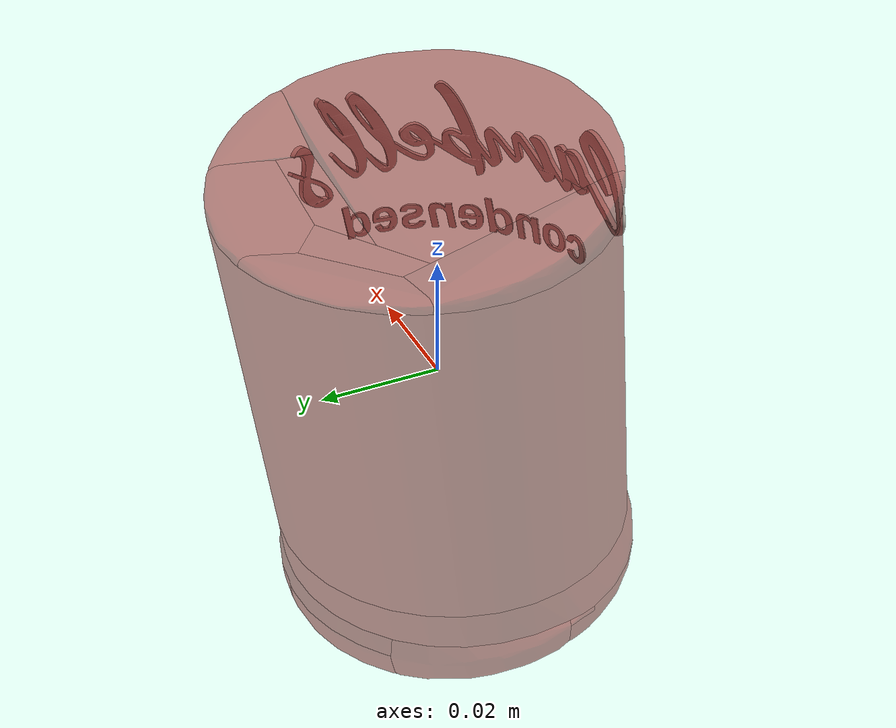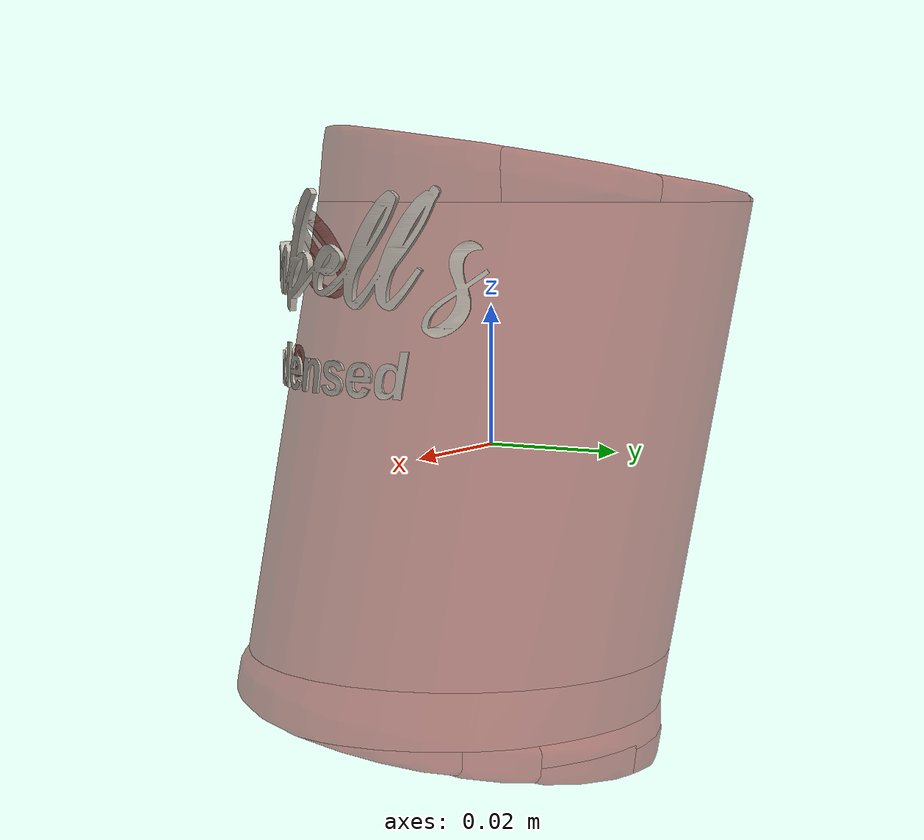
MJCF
<?xml version='1.0' encoding='utf-8'?>
<mujoco model="more_canned_food_7">
  <asset>
    <mesh file="visual/model_normalized_0.obj" name="model_normalized_0_vis" scale="0.08999999999999998 0.08999999999999998 0.08999999999999998" refquat="1.0 0.0 0.0 0.0" />
    <texture type="2d" name="image0" file="visual/image0.png" />
    <material name="Material.015" texture="image0" specular="0.5" shininess="0.030996522" />
    <mesh file="collision/collision_mesh_collision_0.obj" name="canned_collision_mesh_0" scale="0.08999999999999998 0.08999999999999998 0.08999999999999998" refquat="1.0 0.0 0.0 0.0" />
    <mesh file="collision/collision_mesh_collision_1.obj" name="canned_collision_mesh_1" scale="0.08999999999999998 0.08999999999999998 0.08999999999999998" refquat="1.0 0.0 0.0 0.0" />
    <mesh file="collision/collision_mesh_collision_2.obj" name="canned_collision_mesh_2" scale="0.08999999999999998 0.08999999999999998 0.08999999999999998" refquat="1.0 0.0 0.0 0.0" />
    <mesh file="collision/collision_mesh_collision_3.obj" name="canned_collision_mesh_3" scale="0.08999999999999998 0.08999999999999998 0.08999999999999998" refquat="1.0 0.0 0.0 0.0" />
    <mesh file="collision/collision_mesh_collision_4.obj" name="canned_collision_mesh_4" scale="0.08999999999999998 0.08999999999999998 0.08999999999999998" refquat="1.0 0.0 0.0 0.0" />
    <mesh file="collision/collision_mesh_collision_5.obj" name="canned_collision_mesh_5" scale="0.08999999999999998 0.08999999999999998 0.08999999999999998" refquat="1.0 0.0 0.0 0.0" />
    <mesh file="collision/collision_mesh_collision_6.obj" name="canned_collision_mesh_6" scale="0.08999999999999998 0.08999999999999998 0.08999999999999998" refquat="1.0 0.0 0.0 0.0" />
    <mesh file="collision/collision_mesh_collision_7.obj" name="canned_collision_mesh_7" scale="0.08999999999999998 0.08999999999999998 0.08999999999999998" refquat="1.0 0.0 0.0 0.0" />
    <mesh file="collision/collision_mesh_collision_8.obj" name="canned_collision_mesh_8" scale="0.08999999999999998 0.08999999999999998 0.08999999999999998" refquat="1.0 0.0 0.0 0.0" />
    <mesh file="collision/collision_mesh_collision_9.obj" name="canned_collision_mesh_9" scale="0.08999999999999998 0.08999999999999998 0.08999999999999998" refquat="1.0 0.0 0.0 0.0" />
    <mesh file="collision/collision_mesh_collision_10.obj" name="canned_collision_mesh_10" scale="0.08999999999999998 0.08999999999999998 0.08999999999999998" refquat="1.0 0.0 0.0 0.0" />
    <mesh file="collision/collision_mesh_collision_11.obj" name="canned_collision_mesh_11" scale="0.08999999999999998 0.08999999999999998 0.08999999999999998" refquat="1.0 0.0 0.0 0.0" />
    <mesh file="collision/collision_mesh_collision_12.obj" name="canned_collision_mesh_12" scale="0.08999999999999998 0.08999999999999998 0.08999999999999998" refquat="1.0 0.0 0.0 0.0" />
    <mesh file="collision/collision_mesh_collision_13.obj" name="canned_collision_mesh_13" scale="0.08999999999999998 0.08999999999999998 0.08999999999999998" refquat="1.0 0.0 0.0 0.0" />
    <mesh file="collision/collision_mesh_collision_14.obj" name="canned_collision_mesh_14" scale="0.08999999999999998 0.08999999999999998 0.08999999999999998" refquat="1.0 0.0 0.0 0.0" />
    <mesh file="collision/collision_mesh_collision_15.obj" name="canned_collision_mesh_15" scale="0.08999999999999998 0.08999999999999998 0.08999999999999998" refquat="1.0 0.0 0.0 0.0" />
  </asset>
  <default>
    <default class="region">
      <geom group="1" conaffinity="0" contype="0" rgba="0 1 0 0" mass="0" />
    </default>
    <default class="collision">
      <geom group="0" rgba="0.5 0 0 0.5" density="1228.800300624" />
    </default>
  </default>
  <worldbody>
    <body>
      <body name="object">
        <geom solimp="0.998 0.998 0.001" solref="0.001 1" density="122.880030062" friction="0.95 0.3 0.1" type="mesh" mesh="model_normalized_0_vis" conaffinity="0" contype="0" group="1" material="Material.015" />
        <geom class="region" name="reg_bbox" type="box" pos="4.184100000000911e-06 6.925500000001804e-06 6.976350000002516e-06" size="0.034315532999999995 0.036056906099999994 0.045363795749999984" />
        <geom mesh="canned_collision_mesh_0" type="mesh" class="collision" />
        <geom mesh="canned_collision_mesh_1" type="mesh" class="collision" />
        <geom mesh="canned_collision_mesh_2" type="mesh" class="collision" />
        <geom mesh="canned_collision_mesh_3" type="mesh" class="collision" />
        <geom mesh="canned_collision_mesh_4" type="mesh" class="collision" />
        <geom mesh="canned_collision_mesh_5" type="mesh" class="collision" />
        <geom mesh="canned_collision_mesh_6" type="mesh" class="collision" />
        <geom mesh="canned_collision_mesh_7" type="mesh" class="collision" />
        <geom mesh="canned_collision_mesh_8" type="mesh" class="collision" />
        <geom mesh="canned_collision_mesh_9" type="mesh" class="collision" />
        <geom mesh="canned_collision_mesh_10" type="mesh" class="collision" />
        <geom mesh="canned_collision_mesh_11" type="mesh" class="collision" />
        <geom mesh="canned_collision_mesh_12" type="mesh" class="collision" />
        <geom mesh="canned_collision_mesh_13" type="mesh" class="collision" />
        <geom mesh="canned_collision_mesh_14" type="mesh" class="collision" />
        <geom mesh="canned_collision_mesh_15" type="mesh" class="collision" />
      </body>
    </body>
  </worldbody>
</mujoco>
